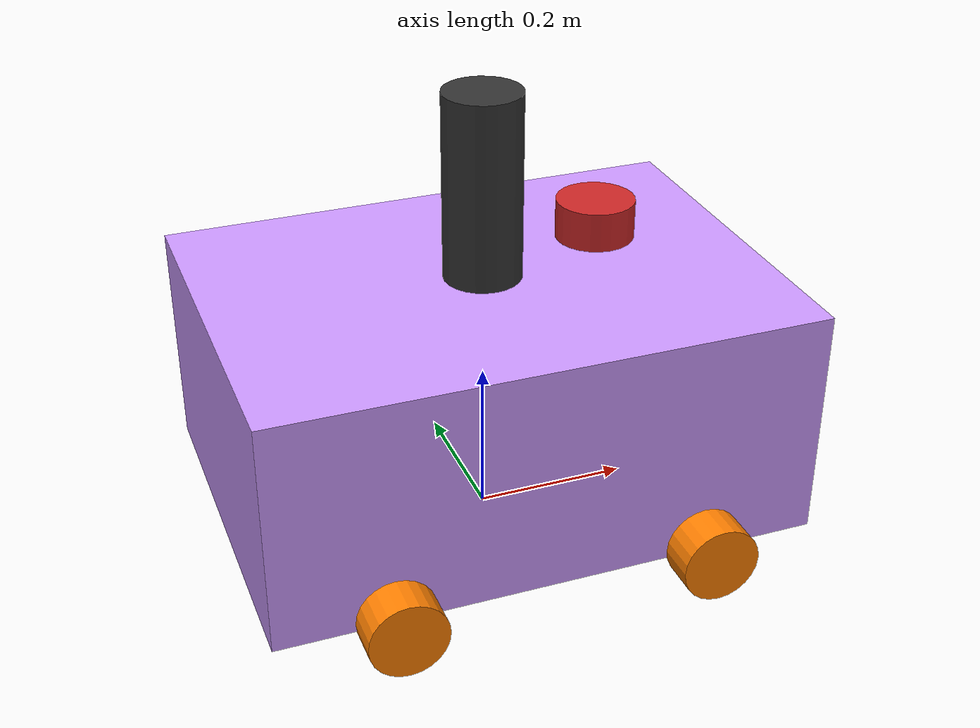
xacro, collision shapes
<?xml version="1.0"?>
<robot xmlns:xacro="http://www.ros.org/wiki/xacro" name="robot">

    <!-- Include elements from other xacro files -->
    <xacro:include filename="$(find articubot_one)/description/robot_core.xacro" />
    <xacro:include filename="$(find articubot_one)/description/lidar.xacro" />
    <xacro:include filename="$(find articubot_one)/description/camera.xacro" />
    <xacro:include filename="$(find articubot_one)/description/gazebo_control.xacro" />

    <!-- Use elements from included xacro files if needed -->
    <!-- Example: -->

</robot>

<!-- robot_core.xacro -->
<robot xmlns:xacro="http://www.ros.org/wiki/xacro">
  <xacro:property name="PI" value="3.1415926535897931" />
  <xacro:include filename="inertial_macros.xacro" />
  <xacro:include filename="$(find articubot_one)/description/mecanum_wheel/mecanum_wheel.urdf.xacro"/>

  <!-- Material Definitions -->
  <material name="white">
    <color rgba="1 1 1 1"/>
  </material>
  <material name="blue">
    <color rgba="0.2 0.2 1 1"/>
  </material>
  <material name="black">
    <color rgba="0 0 0 1"/>
  </material>
  <material name="red">
    <color rgba="1 0 0 1"/>
  </material>
  <material name="yellow">
    <color rgba="0.8 0.8 0.0 1.0"/>
  </material>
  <material name="dark_grey">
    <color rgba="0.2 0.2 0.2 1.0"/>
  </material>
  <material name="light_grey">
    <color rgba="0.4 0.4 0.4 1.0"/>
  </material>
  <material name="light_purple">
    <color rgba="0.8 0.6 1.0 1.0"/>
  </material>

  <link name="base_footprint">
  </link>

  <joint name="base_footprint_to_base_link" type="fixed">
    <origin xyz="0 0 0.04" rpy="0 0 0" />
    <parent link="base_footprint" />
    <child link="base_link" />
  </joint>

  <!-- Define base link -->
  <link name="base_link">
    <xacro:inertial_box mass="4.0990470908566525" x="0.7" y="0.5" z="0.3">
      <origin xyz="0 0 0" rpy="0 0 0"/>
    </xacro:inertial_box>
    <visual>
      <origin xyz="0 0 0" rpy="0 0 0"/>
      <geometry>
        <mesh filename="file://$(find articubot_one)/description/meshes/base_link.stl" scale="0.001 0.001 0.001"/>
      </geometry>
      <material name="light_purple"/>
    </visual>
    <collision>
      <origin xyz="0 0 0.15" rpy="0 0 0"/>
      <geometry>
        <box size="0.7 0.5 0.3"/>
      </geometry>
    </collision>
  </link>

  <!-- Upper Left Wheel -->
  <xacro:wheel_v0 prefix="upper" parent="base_link">
    <origin xyz="0.2 0.275 0.01" rpy="0 0 ${PI}"/>
    <axis xyz="0 1 0"/>
  </xacro:wheel_v0>

  <!-- Lower Left Wheel -->
  <xacro:wheel_v0 prefix="lower" parent="base_link">
    <origin xyz="-0.2 0.275 0.01" rpy="0 0 ${PI}"/>
    <axis xyz="0 1 0"/>
  </xacro:wheel_v0>

  <!-- Upper Right Wheel -->
  <xacro:wheel_v1 prefix="upper" parent="base_link">
    <origin xyz="0.2 -0.275 0.01" rpy="0 0 0"/>
    <axis xyz="0 -1 0"/>
  </xacro:wheel_v1>

  <!-- Lower Right Wheel -->
  <xacro:wheel_v1 prefix="lower" parent="base_link">
    <origin xyz="-0.2 -0.275 0.01" rpy="0 0 0"/>
    <axis xyz="0 -1 0"/>
  </xacro:wheel_v1>

  <!-- Transmissions -->
  <xacro:wheel_trans_v0 prefix="upper_right"/>
  <xacro:wheel_trans_v0 prefix="upper_left"/>
  <xacro:wheel_trans_v0 prefix="lower_right"/>
  <xacro:wheel_trans_v0 prefix="lower_left"/>

  <!-- Gazebo -->
  <gazebo reference="base_link">
    <material>Gazebo/Green</material>
    <self_collide>false</self_collide>
    <gravity>true</gravity>
  </gazebo>

  <!-- Wheel Gazebo -->
  <xacro:wheel_gazebo_v0 prefix="upper_right"/>
  <xacro:wheel_gazebo_v0 prefix="upper_left"/>
  <xacro:wheel_gazebo_v0 prefix="lower_right"/>
  <xacro:wheel_gazebo_v0 prefix="lower_left"/>
</robot>

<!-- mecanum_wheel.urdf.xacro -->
<robot xmlns:xacro="http://ros.org/wiki/xacro">

  <xacro:include filename="$(find articubot_one)/description/inertial_macros.xacro" />
  <xacro:property name="PI" value="3.1415926535897931" />

  <xacro:property name="wheel_radius" value="0.050" />
  <xacro:property name="wheel_width" value="0.0505" />
  <xacro:include filename="$(find articubot_one)/description/mecanum_wheel/mecanum_wheel.transmission.xacro"/>
  <xacro:include filename="$(find articubot_one)/description/mecanum_wheel/mecanum_wheel.gazebo.xacro"/>

  <!-- Material definition -->
  <material name="orange">
    <color rgba="1 0.5 0 1"/>
  </material>

  <!-- wheel_v0 macro definition -->
  <xacro:macro name="wheel_v0" params="prefix parent *joint_origin *joint_axis">
    <joint name="${prefix}_left_wheel_joint" type="continuous">
      <xacro:insert_block name="joint_origin"/>
      <parent link="${parent}"/>
      <child link="${prefix}_left_wheel_link"/>
      <limit effort="100" velocity="300"/>
      <xacro:insert_block name="joint_axis"/>
    </joint>

    <link name="${prefix}_left_wheel_link">
      <visual>
        <origin xyz="0 0 0" rpy="0 0 0" />
        <geometry>
          <mesh filename="file://$(find articubot_one)/description/meshes/mecanum_wheel_left.STL" scale="0.001 0.001 0.001"/>
        </geometry>
        <material name="orange" />
      </visual>
      <collision>
        <origin xyz="0 0 0" rpy="${PI/2} 0 0"/>
        <geometry>
          <cylinder radius="${wheel_radius}" length="${wheel_width}"/>
        </geometry>
      </collision>
      <xacro:inertial_cylinder mass="0.3844" radius="${wheel_radius}" length="${wheel_width}">
        <origin xyz="0 0 0" rpy="0 0 0"/>
      </xacro:inertial_cylinder>
      <surface>
        <friction>
          <ode>
            <mu>0.9</mu>
            <mu2>0.9</mu2>
            <kp>1e15</kp>
            <kd>1e13</kd>
          </ode>
        </friction>
        <bounce>
          <restitution_coefficient>0.01</restitution_coefficient>
          <threshold>0</threshold>
        </bounce>
        <contact>
          <ode>
            <max_vel>10</max_vel>
          </ode>
        </contact>
      </surface>
    </link>
  </xacro:macro>

  <!-- wheel_v1 macro definition -->
  <xacro:macro name="wheel_v1" params="prefix parent *joint_origin *joint_axis">
    <joint name="${prefix}_right_wheel_joint" type="continuous">
      <xacro:insert_block name="joint_origin"/>
      <parent link="${parent}"/>
      <child link="${prefix}_right_wheel_link"/>
      <limit effort="100" velocity="300"/>
      <xacro:insert_block name="joint_axis"/>
    </joint>

    <link name="${prefix}_right_wheel_link">
      <visual>
        <origin xyz="0 0 0" rpy="0 0 0" />
        <geometry>
          <mesh filename="file://$(find articubot_one)/description/meshes/mecanum_wheel_right.STL" scale="0.001 0.001 0.001"/>
        </geometry>
        <material name="orange" />
      </visual>
      <collision>
        <origin xyz="0 0 0" rpy="${PI/2} 0 0"/>
        <geometry>
          <cylinder radius="${wheel_radius}" length="${wheel_width}"/>
        </geometry>
      </collision>
      <xacro:inertial_cylinder mass="0.3844" radius="${wheel_radius}" length="${wheel_width}">
        <origin xyz="0 0 0" rpy="0 0 0"/>
      </xacro:inertial_cylinder>
      <surface>
        <friction>
          <ode>
            <mu>0.9</mu>
            <mu2>0.9</mu2>
            <kp>1e15</kp>
            <kd>1e13</kd>
          </ode>
        </friction>
        <bounce>
          <restitution_coefficient>0.01</restitution_coefficient>
          <threshold>0</threshold>
        </bounce>
        <contact>
          <ode>
            <max_vel>10</max_vel>
          </ode>
        </contact>
      </surface>
    </link>
  </xacro:macro>

</robot>

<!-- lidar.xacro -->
<robot xmlns:xacro="http://www.ros.org/wiki/xacro">

    <!-- Including external xacro file for inertial macros -->
    <xacro:include filename="inertial_macros.xacro" />

    <!-- Define a fixed joint for the laser -->
    <joint name="laser_joint" type="fixed">
        <parent link="base_link"/>
        <child link="laser_frame"/>
        <origin xyz="0.15 0 0.33" rpy="0 0 0"/>
    </joint>

    <!-- Define the laser frame link -->
    <link name="laser_frame">
        <inertial>
            <origin xyz="-0.11 0 -0.3" rpy="0 0 0"/>
            <mass value="0.058519310420852316"/>
            <inertia ixx="0.0001" ixy="0.0" ixz="0.0" iyy="0.0001" iyz="0.0" izz="0.0001"/>
        </inertial>

        <visual>
            <origin xyz="-0.11 0 -0.33" rpy="0 0 0"/>
            <geometry>
                <mesh filename="file://$(find articubot_one)/description/meshes/lidar_1.stl" scale="0.001 0.001 0.001"/>
            </geometry>
        </visual>

        <collision>
            <origin xyz="0 0 0.025" rpy="0 0 0"/>
            <geometry>
                <cylinder radius="0.05" length="0.05"/>
            </geometry>
        </collision>
    </link>

    <gazebo reference="laser_frame">
        <material>Gazebo/Red</material>

        <sensor name="laser" type="ray">
            <pose>0 0 0.01 0 0 0</pose>
            <visualize>true</visualize>
            <update_rate>100</update_rate>
            <ray>
                <scan>
                    <horizontal>
                        <samples>360</samples>
                        <min_angle>-3.14</min_angle>
                        <max_angle>3.14</max_angle>
                    </horizontal>
                </scan>
                <range>
                    <min>0.3</min>
                    <max>12</max>
                </range>
            </ray>
            <plugin name="laser_controller" filename="libgazebo_ros_ray_sensor.so">
                <ros>
                    <namespace>/</namespace>
                    <remapping>out:=/scan</remapping>
                </ros>
                <output_type>sensor_msgs/LaserScan</output_type>
                <frame_name>laser_frame</frame_name>
            </plugin>
        </sensor>
    </gazebo>
</robot>

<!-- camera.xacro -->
<robot xmlns:xacro="http://www.ros.org/wiki/xacro">

  <link name="camera_link">
      <xacro:inertial_cylinder mass="0.24695182299262655" radius="0.05" length="0.24">
        <origin xyz="0.0 0.0 -0.46" rpy="0 0 0"/>
      </xacro:inertial_cylinder>
    <visual>
      <origin xyz="0.0 0.0 -0.46" rpy="0 0 0"/>
      <geometry>
        <mesh filename="file://$(find articubot_one)/description/meshes/camera_link.stl" scale="0.001 0.001 0.001"/>
      </geometry>
      <material name="dark_grey"/>
    </visual>
    <collision>
      <origin xyz="0.0 0.0 -0.03" rpy="0 0 0"/>
      <geometry>
        <cylinder radius="0.05" length="0.24"/>
      </geometry>
    </collision>
  </link>

  <joint name="camera_joint" type="fixed">
    <parent link="base_link"/>
    <child link="camera_link"/>
    <origin xyz="0.0 0.0 0.45" rpy="0 0 0"/>
  </joint>

  <link name="camera_link_optical">
    <inertial>
      <origin xyz="0 0 0" rpy="0 0 0"/>
      <mass value="0.01"/>
      <inertia ixx="0.00001" iyy="0.00001" izz="0.00001" ixy="0.0" iyz="0.0" ixz="0.0"/>
    </inertial>
  </link>

  <joint name="camera_optical_joint" type="fixed">
    <parent link="camera_link"/>
    <child link="camera_link_optical"/>
    <origin xyz="0 0 0" rpy="0 ${-PI/2} ${-PI/2}"/>
  </joint>

  <gazebo reference="camera_link">
    <material>Gazebo/Grey</material>
    <sensor name="camera" type="camera">
      <pose>0 0 0 0 0 0</pose>
      <visualize>true</visualize>
      <update_rate>10</update_rate>
      <camera>
        <horizontal_fov>1.089</horizontal_fov>
        <image>
          <format>R8G8B8</format>
          <width>640</width>
          <height>480</height>
        </image>
        <clip>
          <near>0.05</near>
          <far>8.0</far>
        </clip>
      </camera>
      <plugin name="camera_controller" filename="libgazebo_ros_camera.so">
        <frame_name>camera_link_optical</frame_name>
      </plugin>
    </sensor>
  </gazebo>
</robot>
